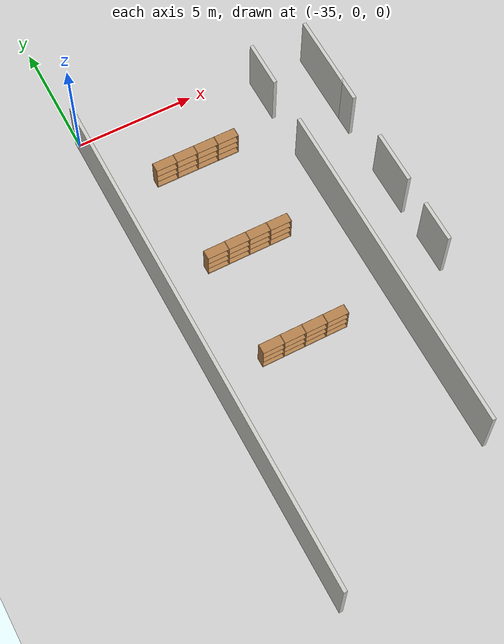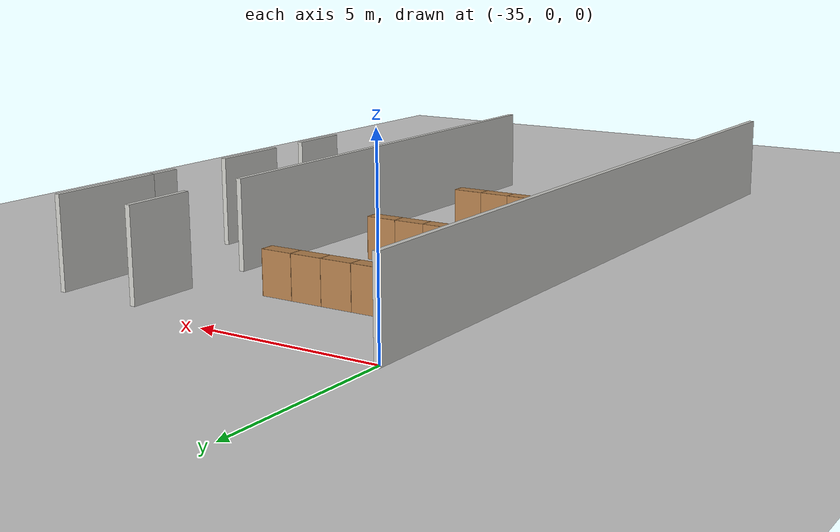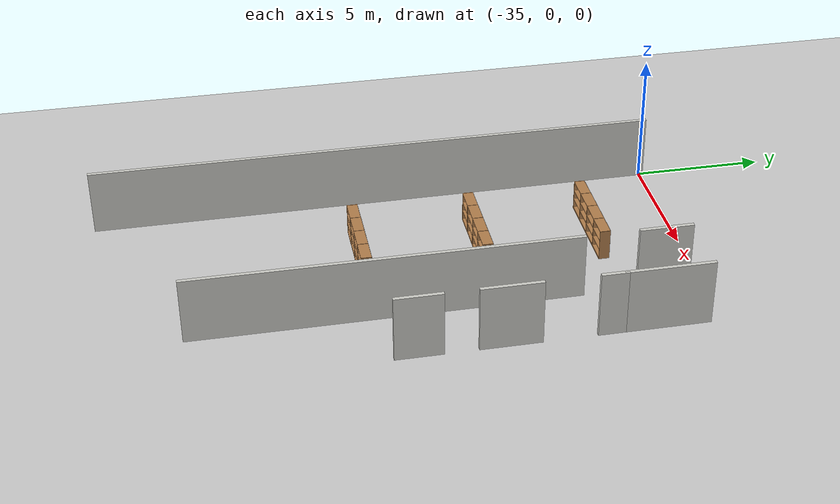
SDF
<sdf version="1.6">
 <world name="default">
  <model name="ground_plane">
   <static>1</static>
   <link name="link">
    <collision name="collision">
     <geometry><plane><normal>0 0 1</normal><size>100 100</size></plane></geometry>
     <surface><friction><ode><mu>100</mu><mu2>50</mu2></ode></friction></surface>
    </collision>
    <visual name="visual">
     <cast_shadows>0</cast_shadows>
     <geometry><plane><normal>0 0 1</normal><size>100 100</size></plane></geometry>
     <material>
      <script><uri>file://media/materials/scripts/gazebo.material</uri><name>Gazebo/Grey</name></script>
     </material>
    </visual>
   </link>
  </model>
  <model name="floor">
   <link name="Wall_15">
    <pose>-36.3 -9.45 0 0 0 -1.5708</pose>
    <visual name="Wall_15_Visual">
     <pose>0 0 1.25 0 -0 0</pose>
     <geometry><box><size>21.75 0.15 2.5</size></box></geometry>
     <material>
      <script><uri>file://media/materials/scripts/gazebo.material</uri><name>Gazebo/CeilingTiled</name></script>
      <ambient>0.760784 0.662745 0.627451 1</ambient>
     </material>
     <meta><layer>0</layer></meta>
    </visual>
    <collision name="Wall_15_Collision">
     <pose>0 0 1.25 0 -0 0</pose>
     <geometry><box><size>21.75 0.15 2.5</size></box></geometry>
     <surface>
      <friction>
       <ode><mu>1</mu><mu2>1</mu2><fdir1>0 0 0</fdir1><slip1>0</slip1><slip2>0</slip2></ode>
       <torsional>
        <coefficient>1</coefficient>
        <patch_radius>0</patch_radius>
        <surface_radius>0</surface_radius>
        <use_patch_radius>1</use_patch_radius>
        <ode><slip>0</slip></ode>
       </torsional>
      </friction>
      <bounce><restitution_coefficient>0</restitution_coefficient><threshold>1e+06</threshold></bounce>
      <contact>
       <collide_without_contact>0</collide_without_contact>
       <collide_without_contact_bitmask>1</collide_without_contact_bitmask>
       <collide_bitmask>1</collide_bitmask>
       <ode>
        <soft_cfm>0</soft_cfm>
        <soft_erp>0.2</soft_erp>
        <kp>1e+13</kp>
        <kd>1</kd>
        <max_vel>0.01</max_vel>
        <min_depth>0</min_depth>
       </ode>
       <bullet>
        <split_impulse>1</split_impulse>
        <split_impulse_penetration_threshold>-0.01</split_impulse_penetration_threshold>
        <soft_cfm>0</soft_cfm>
        <soft_erp>0.2</soft_erp>
        <kp>1e+13</kp>
        <kd>1</kd>
       </bullet>
      </contact>
     </surface>
    </collision>
   </link>
   <link name="Wall_23">
    <pose>-28.6403 -0.187272 0 0 0 -1.5708</pose>
    <visual name="Wall_23_Visual">
     <pose>0 0 1.25 0 -0 0</pose>
     <geometry><box><size>2 0.15 2.5</size></box></geometry>
     <material>
      <script><uri>file://media/materials/scripts/gazebo.material</uri><name>Gazebo/CeilingTiled</name></script>
      <ambient>0.760784 0.662745 0.627451 1</ambient>
     </material>
     <meta><layer>0</layer></meta>
    </visual>
    <collision name="Wall_23_Collision">
     <pose>0 0 1.25 0 -0 0</pose>
     <geometry><box><size>2 0.15 2.5</size></box></geometry>
     <surface>
      <friction>
       <ode><mu>1</mu><mu2>1</mu2><fdir1>0 0 0</fdir1><slip1>0</slip1><slip2>0</slip2></ode>
       <torsional>
        <coefficient>1</coefficient>
        <patch_radius>0</patch_radius>
        <surface_radius>0</surface_radius>
        <use_patch_radius>1</use_patch_radius>
        <ode><slip>0</slip></ode>
       </torsional>
      </friction>
      <bounce><restitution_coefficient>0</restitution_coefficient><threshold>1e+06</threshold></bounce>
      <contact>
       <collide_without_contact>0</collide_without_contact>
       <collide_without_contact_bitmask>1</collide_without_contact_bitmask>
       <collide_bitmask>1</collide_bitmask>
       <ode>
        <soft_cfm>0</soft_cfm>
        <soft_erp>0.2</soft_erp>
        <kp>1e+13</kp>
        <kd>1</kd>
        <max_vel>0.01</max_vel>
        <min_depth>0</min_depth>
       </ode>
       <bullet>
        <split_impulse>1</split_impulse>
        <split_impulse_penetration_threshold>-0.01</split_impulse_penetration_threshold>
        <soft_cfm>0</soft_cfm>
        <soft_erp>0.2</soft_erp>
        <kp>1e+13</kp>
        <kd>1</kd>
       </bullet>
      </contact>
     </surface>
    </collision>
   </link>
   <link name="Wall_25">
    <pose>-28.6403 -10.2623 0 0 0 -1.5708</pose>
    <visual name="Wall_25_Visual">
     <pose>0 0 1.25 0 -0 0</pose>
     <geometry><box><size>14.25 0.15 2.5</size></box></geometry>
     <material>
      <script><uri>file://media/materials/scripts/gazebo.material</uri><name>Gazebo/CeilingTiled</name></script>
      <ambient>0.760784 0.662745 0.627451 1</ambient>
     </material>
     <meta><layer>0</layer></meta>
    </visual>
    <collision name="Wall_25_Collision">
     <pose>0 0 1.25 0 -0 0</pose>
     <geometry><box><size>14.25 0.15 2.5</size></box></geometry>
     <surface>
      <friction>
       <ode><mu>1</mu><mu2>1</mu2><fdir1>0 0 0</fdir1><slip1>0</slip1><slip2>0</slip2></ode>
       <torsional>
        <coefficient>1</coefficient>
        <patch_radius>0</patch_radius>
        <surface_radius>0</surface_radius>
        <use_patch_radius>1</use_patch_radius>
        <ode><slip>0</slip></ode>
       </torsional>
      </friction>
      <bounce><restitution_coefficient>0</restitution_coefficient><threshold>1e+06</threshold></bounce>
      <contact>
       <collide_without_contact>0</collide_without_contact>
       <collide_without_contact_bitmask>1</collide_without_contact_bitmask>
       <collide_bitmask>1</collide_bitmask>
       <ode>
        <soft_cfm>0</soft_cfm>
        <soft_erp>0.2</soft_erp>
        <kp>1e+13</kp>
        <kd>1</kd>
        <max_vel>0.01</max_vel>
        <min_depth>0</min_depth>
       </ode>
       <bullet>
        <split_impulse>1</split_impulse>
        <split_impulse_penetration_threshold>-0.01</split_impulse_penetration_threshold>
        <soft_cfm>0</soft_cfm>
        <soft_erp>0.2</soft_erp>
        <kp>1e+13</kp>
        <kd>1</kd>
       </bullet>
      </contact>
     </surface>
    </collision>
   </link>
   <link name="Wall_38">
    <pose>-26.2339 -0.812272 0 0 0 -1.5708</pose>
    <visual name="Wall_38_Visual">
     <pose>0 0 1.25 0 -0 0</pose>
     <geometry><box><size>3.25 0.15 2.5</size></box></geometry>
     <material>
      <script><uri>file://media/materials/scripts/gazebo.material</uri><name>Gazebo/CeilingTiled</name></script>
      <ambient>0.760784 0.662745 0.627451 1</ambient>
     </material>
     <meta><layer>0</layer></meta>
    </visual>
    <collision name="Wall_38_Collision">
     <pose>0 0 1.25 0 -0 0</pose>
     <geometry><box><size>3.25 0.15 2.5</size></box></geometry>
     <surface>
      <friction>
       <ode><mu>1</mu><mu2>1</mu2><fdir1>0 0 0</fdir1><slip1>0</slip1><slip2>0</slip2></ode>
       <torsional>
        <coefficient>1</coefficient>
        <patch_radius>0</patch_radius>
        <surface_radius>0</surface_radius>
        <use_patch_radius>1</use_patch_radius>
        <ode><slip>0</slip></ode>
       </torsional>
      </friction>
      <bounce><restitution_coefficient>0</restitution_coefficient><threshold>1e+06</threshold></bounce>
      <contact>
       <collide_without_contact>0</collide_without_contact>
       <collide_without_contact_bitmask>1</collide_without_contact_bitmask>
       <collide_bitmask>1</collide_bitmask>
       <ode>
        <soft_cfm>0</soft_cfm>
        <soft_erp>0.2</soft_erp>
        <kp>1e+13</kp>
        <kd>1</kd>
        <max_vel>0.01</max_vel>
        <min_depth>0</min_depth>
       </ode>
       <bullet>
        <split_impulse>1</split_impulse>
        <split_impulse_penetration_threshold>-0.01</split_impulse_penetration_threshold>
        <soft_cfm>0</soft_cfm>
        <soft_erp>0.2</soft_erp>
        <kp>1e+13</kp>
        <kd>1</kd>
       </bullet>
      </contact>
     </surface>
    </collision>
   </link>
   <link name="Wall_39">
    <pose>-26.2339 -2.78727 0 0 0 -1.5708</pose>
    <visual name="Wall_39_Visual">
     <pose>0 0 1.25 0 -0 0</pose>
     <geometry><box><size>1 0.15 2.5</size></box></geometry>
     <material>
      <script><uri>file://media/materials/scripts/gazebo.material</uri><name>Gazebo/CeilingTiled</name></script>
      <ambient>0.760784 0.662745 0.627451 1</ambient>
     </material>
     <meta><layer>0</layer></meta>
    </visual>
    <collision name="Wall_39_Collision">
     <pose>0 0 1.25 0 -0 0</pose>
     <geometry><box><size>1 0.15 2.5</size></box></geometry>
     <surface>
      <friction>
       <ode><mu>1</mu><mu2>1</mu2><fdir1>0 0 0</fdir1><slip1>0</slip1><slip2>0</slip2></ode>
       <torsional>
        <coefficient>1</coefficient>
        <patch_radius>0</patch_radius>
        <surface_radius>0</surface_radius>
        <use_patch_radius>1</use_patch_radius>
        <ode><slip>0</slip></ode>
       </torsional>
      </friction>
      <bounce><restitution_coefficient>0</restitution_coefficient><threshold>1e+06</threshold></bounce>
      <contact>
       <collide_without_contact>0</collide_without_contact>
       <collide_without_contact_bitmask>1</collide_without_contact_bitmask>
       <collide_bitmask>1</collide_bitmask>
       <ode>
        <soft_cfm>0</soft_cfm>
        <soft_erp>0.2</soft_erp>
        <kp>1e+13</kp>
        <kd>1</kd>
        <max_vel>0.01</max_vel>
        <min_depth>0</min_depth>
       </ode>
       <bullet>
        <split_impulse>1</split_impulse>
        <split_impulse_penetration_threshold>-0.01</split_impulse_penetration_threshold>
        <soft_cfm>0</soft_cfm>
        <soft_erp>0.2</soft_erp>
        <kp>1e+13</kp>
        <kd>1</kd>
       </bullet>
      </contact>
     </surface>
    </collision>
   </link>
   <link name="Wall_46">
    <pose>-26.2339 -6.36227 0 0 0 -1.5708</pose>
    <visual name="Wall_46_Visual">
     <pose>0 0 1.25 0 -0 0</pose>
     <geometry><box><size>2.25 0.15 2.5</size></box></geometry>
     <material>
      <script><uri>file://media/materials/scripts/gazebo.material</uri><name>Gazebo/CeilingTiled</name></script>
      <ambient>0.760784 0.662745 0.627451 1</ambient>
     </material>
     <meta><layer>0</layer></meta>
    </visual>
    <collision name="Wall_46_Collision">
     <pose>0 0 1.25 0 -0 0</pose>
     <geometry><box><size>2.25 0.15 2.5</size></box></geometry>
     <surface>
      <friction>
       <ode><mu>1</mu><mu2>1</mu2><fdir1>0 0 0</fdir1><slip1>0</slip1><slip2>0</slip2></ode>
       <torsional>
        <coefficient>1</coefficient>
        <patch_radius>0</patch_radius>
        <surface_radius>0</surface_radius>
        <use_patch_radius>1</use_patch_radius>
        <ode><slip>0</slip></ode>
       </torsional>
      </friction>
      <bounce><restitution_coefficient>0</restitution_coefficient><threshold>1e+06</threshold></bounce>
      <contact>
       <collide_without_contact>0</collide_without_contact>
       <collide_without_contact_bitmask>1</collide_without_contact_bitmask>
       <collide_bitmask>1</collide_bitmask>
       <ode>
        <soft_cfm>0</soft_cfm>
        <soft_erp>0.2</soft_erp>
        <kp>1e+13</kp>
        <kd>1</kd>
        <max_vel>0.01</max_vel>
        <min_depth>0</min_depth>
       </ode>
       <bullet>
        <split_impulse>1</split_impulse>
        <split_impulse_penetration_threshold>-0.01</split_impulse_penetration_threshold>
        <soft_cfm>0</soft_cfm>
        <soft_erp>0.2</soft_erp>
        <kp>1e+13</kp>
        <kd>1</kd>
       </bullet>
      </contact>
     </surface>
    </collision>
   </link>
   <link name="Wall_48">
    <pose>-26.2339 -9.56227 0 0 0 -1.5708</pose>
    <visual name="Wall_48_Visual">
     <pose>0 0 1.25 0 -0 0</pose>
     <geometry><box><size>1.75 0.15 2.5</size></box></geometry>
     <material>
      <script><uri>file://media/materials/scripts/gazebo.material</uri><name>Gazebo/CeilingTiled</name></script>
      <ambient>0.760784 0.662745 0.627451 1</ambient>
     </material>
     <meta><layer>0</layer></meta>
    </visual>
    <collision name="Wall_48_Collision">
     <pose>0 0 1.25 0 -0 0</pose>
     <geometry><box><size>1.75 0.15 2.5</size></box></geometry>
     <surface>
      <friction>
       <ode><mu>1</mu><mu2>1</mu2><fdir1>0 0 0</fdir1><slip1>0</slip1><slip2>0</slip2></ode>
       <torsional>
        <coefficient>1</coefficient>
        <patch_radius>0</patch_radius>
        <surface_radius>0</surface_radius>
        <use_patch_radius>1</use_patch_radius>
        <ode><slip>0</slip></ode>
       </torsional>
      </friction>
      <bounce><restitution_coefficient>0</restitution_coefficient><threshold>1e+06</threshold></bounce>
      <contact>
       <collide_without_contact>0</collide_without_contact>
       <collide_without_contact_bitmask>1</collide_without_contact_bitmask>
       <collide_bitmask>1</collide_bitmask>
       <ode>
        <soft_cfm>0</soft_cfm>
        <soft_erp>0.2</soft_erp>
        <kp>1e+13</kp>
        <kd>1</kd>
        <max_vel>0.01</max_vel>
        <min_depth>0</min_depth>
       </ode>
       <bullet>
        <split_impulse>1</split_impulse>
        <split_impulse_penetration_threshold>-0.01</split_impulse_penetration_threshold>
        <soft_cfm>0</soft_cfm>
        <soft_erp>0.2</soft_erp>
        <kp>1e+13</kp>
        <kd>1</kd>
       </bullet>
      </contact>
     </surface>
    </collision>
   </link>
   <static>1</static>
   <pose>1.26361 -1.27025 0 0 -0 0</pose>
  </model>
  <model name="Bookshelf-4_clone_19">
   <model name="bookshelf">
    <static>1</static>
    <link name="link">
     <inertial><mass>1</mass></inertial>
     <collision name="back">
      <pose>0 0.005 0.6 0 -0 0</pose>
      <geometry><box><size>0.9 0.01 1.2</size></box></geometry>
     </collision>
     <visual name="visual1">
      <pose>0 0.005 0.6 0 -0 0</pose>
      <geometry><box><size>0.9 0.01 1.2</size></box></geometry>
      <material>
       <script><uri>file://media/materials/scripts/gazebo.material</uri><name>Gazebo/Wood</name></script>
      </material>
     </visual>
     <collision name="left_side">
      <pose>0.45 -0.195 0.6 0 -0 0</pose>
      <geometry><box><size>0.02 0.4 1.2</size></box></geometry>
     </collision>
     <visual name="visual2">
      <pose>0.45 -0.195 0.6 0 -0 0</pose>
      <geometry><box><size>0.02 0.4 1.2</size></box></geometry>
      <material>
       <script><uri>file://media/materials/scripts/gazebo.material</uri><name>Gazebo/Wood</name></script>
      </material>
     </visual>
     <collision name="right_side">
      <pose>-0.45 -0.195 0.6 0 -0 0</pose>
      <geometry><box><size>0.02 0.4 1.2</size></box></geometry>
     </collision>
     <visual name="visual3">
      <pose>-0.45 -0.195 0.6 0 -0 0</pose>
      <geometry><box><size>0.02 0.4 1.2</size></box></geometry>
      <material>
       <script><uri>file://media/materials/scripts/gazebo.material</uri><name>Gazebo/Wood</name></script>
      </material>
     </visual>
     <collision name="bottom">
      <pose>0 -0.195 0.03 0 -0 0</pose>
      <geometry><box><size>0.88 0.4 0.06</size></box></geometry>
     </collision>
     <visual name="visual4">
      <pose>0 -0.195 0.03 0 -0 0</pose>
      <geometry><box><size>0.88 0.4 0.06</size></box></geometry>
      <material>
       <script><uri>file://media/materials/scripts/gazebo.material</uri><name>Gazebo/Wood</name></script>
      </material>
     </visual>
     <collision name="top">
      <pose>0 -0.195 1.19 0 -0 0</pose>
      <geometry><box><size>0.88 0.4 0.02</size></box></geometry>
     </collision>
     <visual name="visual5">
      <pose>0 -0.195 1.19 0 -0 0</pose>
      <geometry><box><size>0.88 0.4 0.02</size></box></geometry>
      <material>
       <script><uri>file://media/materials/scripts/gazebo.material</uri><name>Gazebo/Wood</name></script>
      </material>
     </visual>
     <collision name="low_shelf">
      <pose>0 -0.195 0.43 0 -0 0</pose>
      <geometry><box><size>0.88 0.4 0.02</size></box></geometry>
     </collision>
     <visual name="visual6">
      <pose>0 -0.195 0.43 0 -0 0</pose>
      <geometry><box><size>0.88 0.4 0.02</size></box></geometry>
      <material>
       <script><uri>file://media/materials/scripts/gazebo.material</uri><name>Gazebo/Wood</name></script>
      </material>
     </visual>
     <collision name="high_shelf">
      <pose>0 -0.195 0.8 0 -0 0</pose>
      <geometry><box><size>0.88 0.4 0.02</size></box></geometry>
     </collision>
     <visual name="visual7">
      <pose>0 -0.195 0.8 0 -0 0</pose>
      <geometry><box><size>0.88 0.4 0.02</size></box></geometry>
      <material>
       <script><uri>file://media/materials/scripts/gazebo.material</uri><name>Gazebo/Wood</name></script>
      </material>
     </visual>
    </link>
    <pose>-1.35671 -0.002097 0 0 -0 0</pose>
   </model>
   <model name="bookshelf_0">
    <static>1</static>
    <link name="link">
     <inertial><mass>1</mass></inertial>
     <collision name="back">
      <pose>0 0.005 0.6 0 -0 0</pose>
      <geometry><box><size>0.9 0.01 1.2</size></box></geometry>
     </collision>
     <visual name="visual1">
      <pose>0 0.005 0.6 0 -0 0</pose>
      <geometry><box><size>0.9 0.01 1.2</size></box></geometry>
      <material>
       <script><uri>file://media/materials/scripts/gazebo.material</uri><name>Gazebo/Wood</name></script>
      </material>
     </visual>
     <collision name="left_side">
      <pose>0.45 -0.195 0.6 0 -0 0</pose>
      <geometry><box><size>0.02 0.4 1.2</size></box></geometry>
     </collision>
     <visual name="visual2">
      <pose>0.45 -0.195 0.6 0 -0 0</pose>
      <geometry><box><size>0.02 0.4 1.2</size></box></geometry>
      <material>
       <script><uri>file://media/materials/scripts/gazebo.material</uri><name>Gazebo/Wood</name></script>
      </material>
     </visual>
     <collision name="right_side">
      <pose>-0.45 -0.195 0.6 0 -0 0</pose>
      <geometry><box><size>0.02 0.4 1.2</size></box></geometry>
     </collision>
     <visual name="visual3">
      <pose>-0.45 -0.195 0.6 0 -0 0</pose>
      <geometry><box><size>0.02 0.4 1.2</size></box></geometry>
      <material>
       <script><uri>file://media/materials/scripts/gazebo.material</uri><name>Gazebo/Wood</name></script>
      </material>
     </visual>
     <collision name="bottom">
      <pose>0 -0.195 0.03 0 -0 0</pose>
      <geometry><box><size>0.88 0.4 0.06</size></box></geometry>
     </collision>
     <visual name="visual4">
      <pose>0 -0.195 0.03 0 -0 0</pose>
      <geometry><box><size>0.88 0.4 0.06</size></box></geometry>
      <material>
       <script><uri>file://media/materials/scripts/gazebo.material</uri><name>Gazebo/Wood</name></script>
      </material>
     </visual>
     <collision name="top">
      <pose>0 -0.195 1.19 0 -0 0</pose>
      <geometry><box><size>0.88 0.4 0.02</size></box></geometry>
     </collision>
     <visual name="visual5">
      <pose>0 -0.195 1.19 0 -0 0</pose>
      <geometry><box><size>0.88 0.4 0.02</size></box></geometry>
      <material>
       <script><uri>file://media/materials/scripts/gazebo.material</uri><name>Gazebo/Wood</name></script>
      </material>
     </visual>
     <collision name="low_shelf">
      <pose>0 -0.195 0.43 0 -0 0</pose>
      <geometry><box><size>0.88 0.4 0.02</size></box></geometry>
     </collision>
     <visual name="visual6">
      <pose>0 -0.195 0.43 0 -0 0</pose>
      <geometry><box><size>0.88 0.4 0.02</size></box></geometry>
      <material>
       <script><uri>file://media/materials/scripts/gazebo.material</uri><name>Gazebo/Wood</name></script>
      </material>
     </visual>
     <collision name="high_shelf">
      <pose>0 -0.195 0.8 0 -0 0</pose>
      <geometry><box><size>0.88 0.4 0.02</size></box></geometry>
     </collision>
     <visual name="visual7">
      <pose>0 -0.195 0.8 0 -0 0</pose>
      <geometry><box><size>0.88 0.4 0.02</size></box></geometry>
      <material>
       <script><uri>file://media/materials/scripts/gazebo.material</uri><name>Gazebo/Wood</name></script>
      </material>
     </visual>
    </link>
    <pose>-0.452974 0.001386 0 0 -0 0</pose>
   </model>
   <model name="bookshelf_1">
    <static>1</static>
    <link name="link">
     <inertial><mass>1</mass></inertial>
     <collision name="back">
      <pose>0 0.005 0.6 0 -0 0</pose>
      <geometry><box><size>0.9 0.01 1.2</size></box></geometry>
     </collision>
     <visual name="visual1">
      <pose>0 0.005 0.6 0 -0 0</pose>
      <geometry><box><size>0.9 0.01 1.2</size></box></geometry>
      <material>
       <script><uri>file://media/materials/scripts/gazebo.material</uri><name>Gazebo/Wood</name></script>
      </material>
     </visual>
     <collision name="left_side">
      <pose>0.45 -0.195 0.6 0 -0 0</pose>
      <geometry><box><size>0.02 0.4 1.2</size></box></geometry>
     </collision>
     <visual name="visual2">
      <pose>0.45 -0.195 0.6 0 -0 0</pose>
      <geometry><box><size>0.02 0.4 1.2</size></box></geometry>
      <material>
       <script><uri>file://media/materials/scripts/gazebo.material</uri><name>Gazebo/Wood</name></script>
      </material>
     </visual>
     <collision name="right_side">
      <pose>-0.45 -0.195 0.6 0 -0 0</pose>
      <geometry><box><size>0.02 0.4 1.2</size></box></geometry>
     </collision>
     <visual name="visual3">
      <pose>-0.45 -0.195 0.6 0 -0 0</pose>
      <geometry><box><size>0.02 0.4 1.2</size></box></geometry>
      <material>
       <script><uri>file://media/materials/scripts/gazebo.material</uri><name>Gazebo/Wood</name></script>
      </material>
     </visual>
     <collision name="bottom">
      <pose>0 -0.195 0.03 0 -0 0</pose>
      <geometry><box><size>0.88 0.4 0.06</size></box></geometry>
     </collision>
     <visual name="visual4">
      <pose>0 -0.195 0.03 0 -0 0</pose>
      <geometry><box><size>0.88 0.4 0.06</size></box></geometry>
      <material>
       <script><uri>file://media/materials/scripts/gazebo.material</uri><name>Gazebo/Wood</name></script>
      </material>
     </visual>
     <collision name="top">
      <pose>0 -0.195 1.19 0 -0 0</pose>
      <geometry><box><size>0.88 0.4 0.02</size></box></geometry>
     </collision>
     <visual name="visual5">
      <pose>0 -0.195 1.19 0 -0 0</pose>
      <geometry><box><size>0.88 0.4 0.02</size></box></geometry>
      <material>
       <script><uri>file://media/materials/scripts/gazebo.material</uri><name>Gazebo/Wood</name></script>
      </material>
     </visual>
     <collision name="low_shelf">
      <pose>0 -0.195 0.43 0 -0 0</pose>
      <geometry><box><size>0.88 0.4 0.02</size></box></geometry>
     </collision>
     <visual name="visual6">
      <pose>0 -0.195 0.43 0 -0 0</pose>
      <geometry><box><size>0.88 0.4 0.02</size></box></geometry>
      <material>
       <script><uri>file://media/materials/scripts/gazebo.material</uri><name>Gazebo/Wood</name></script>
      </material>
     </visual>
     <collision name="high_shelf">
      <pose>0 -0.195 0.8 0 -0 0</pose>
      <geometry><box><size>0.88 0.4 0.02</size></box></geometry>
     </collision>
     <visual name="visual7">
      <pose>0 -0.195 0.8 0 -0 0</pose>
      <geometry><box><size>0.88 0.4 0.02</size></box></geometry>
      <material>
       <script><uri>file://media/materials/scripts/gazebo.material</uri><name>Gazebo/Wood</name></script>
      </material>
     </visual>
    </link>
    <pose>0.450456 0.000733 0 0 -0 0</pose>
   </model>
   <model name="bookshelf_2">
    <static>1</static>
    <link name="link">
     <inertial><mass>1</mass></inertial>
     <collision name="back">
      <pose>0 0.005 0.6 0 -0 0</pose>
      <geometry><box><size>0.9 0.01 1.2</size></box></geometry>
     </collision>
     <visual name="visual1">
      <pose>0 0.005 0.6 0 -0 0</pose>
      <geometry><box><size>0.9 0.01 1.2</size></box></geometry>
      <material>
       <script><uri>file://media/materials/scripts/gazebo.material</uri><name>Gazebo/Wood</name></script>
      </material>
     </visual>
     <collision name="left_side">
      <pose>0.45 -0.195 0.6 0 -0 0</pose>
      <geometry><box><size>0.02 0.4 1.2</size></box></geometry>
     </collision>
     <visual name="visual2">
      <pose>0.45 -0.195 0.6 0 -0 0</pose>
      <geometry><box><size>0.02 0.4 1.2</size></box></geometry>
      <material>
       <script><uri>file://media/materials/scripts/gazebo.material</uri><name>Gazebo/Wood</name></script>
      </material>
     </visual>
     <collision name="right_side">
      <pose>-0.45 -0.195 0.6 0 -0 0</pose>
      <geometry><box><size>0.02 0.4 1.2</size></box></geometry>
     </collision>
     <visual name="visual3">
      <pose>-0.45 -0.195 0.6 0 -0 0</pose>
      <geometry><box><size>0.02 0.4 1.2</size></box></geometry>
      <material>
       <script><uri>file://media/materials/scripts/gazebo.material</uri><name>Gazebo/Wood</name></script>
      </material>
     </visual>
     <collision name="bottom">
      <pose>0 -0.195 0.03 0 -0 0</pose>
      <geometry><box><size>0.88 0.4 0.06</size></box></geometry>
     </collision>
     <visual name="visual4">
      <pose>0 -0.195 0.03 0 -0 0</pose>
      <geometry><box><size>0.88 0.4 0.06</size></box></geometry>
      <material>
       <script><uri>file://media/materials/scripts/gazebo.material</uri><name>Gazebo/Wood</name></script>
      </material>
     </visual>
     <collision name="top">
      <pose>0 -0.195 1.19 0 -0 0</pose>
      <geometry><box><size>0.88 0.4 0.02</size></box></geometry>
     </collision>
     <visual name="visual5">
      <pose>0 -0.195 1.19 0 -0 0</pose>
      <geometry><box><size>0.88 0.4 0.02</size></box></geometry>
      <material>
       <script><uri>file://media/materials/scripts/gazebo.material</uri><name>Gazebo/Wood</name></script>
      </material>
     </visual>
     <collision name="low_shelf">
      <pose>0 -0.195 0.43 0 -0 0</pose>
      <geometry><box><size>0.88 0.4 0.02</size></box></geometry>
     </collision>
     <visual name="visual6">
      <pose>0 -0.195 0.43 0 -0 0</pose>
      <geometry><box><size>0.88 0.4 0.02</size></box></geometry>
      <material>
       <script><uri>file://media/materials/scripts/gazebo.material</uri><name>Gazebo/Wood</name></script>
      </material>
     </visual>
     <collision name="high_shelf">
      <pose>0 -0.195 0.8 0 -0 0</pose>
      <geometry><box><size>0.88 0.4 0.02</size></box></geometry>
     </collision>
     <visual name="visual7">
      <pose>0 -0.195 0.8 0 -0 0</pose>
      <geometry><box><size>0.88 0.4 0.02</size></box></geometry>
      <material>
       <script><uri>file://media/materials/scripts/gazebo.material</uri><name>Gazebo/Wood</name></script>
      </material>
     </visual>
    </link>
    <pose>1.35922 -1.7e-05 0 0 -0 0</pose>
   </model>
   <static>0</static>
   <pose>-31.2412 -2.86092 0 0 -0 0</pose>
  </model>
  <model name="Bookshelf-4_clone_20">
   <model name="bookshelf">
    <static>1</static>
    <link name="link">
     <inertial><mass>1</mass></inertial>
     <collision name="back">
      <pose>0 0.005 0.6 0 -0 0</pose>
      <geometry><box><size>0.9 0.01 1.2</size></box></geometry>
     </collision>
     <visual name="visual1">
      <pose>0 0.005 0.6 0 -0 0</pose>
      <geometry><box><size>0.9 0.01 1.2</size></box></geometry>
      <material>
       <script><uri>file://media/materials/scripts/gazebo.material</uri><name>Gazebo/Wood</name></script>
      </material>
     </visual>
     <collision name="left_side">
      <pose>0.45 -0.195 0.6 0 -0 0</pose>
      <geometry><box><size>0.02 0.4 1.2</size></box></geometry>
     </collision>
     <visual name="visual2">
      <pose>0.45 -0.195 0.6 0 -0 0</pose>
      <geometry><box><size>0.02 0.4 1.2</size></box></geometry>
      <material>
       <script><uri>file://media/materials/scripts/gazebo.material</uri><name>Gazebo/Wood</name></script>
      </material>
     </visual>
     <collision name="right_side">
      <pose>-0.45 -0.195 0.6 0 -0 0</pose>
      <geometry><box><size>0.02 0.4 1.2</size></box></geometry>
     </collision>
     <visual name="visual3">
      <pose>-0.45 -0.195 0.6 0 -0 0</pose>
      <geometry><box><size>0.02 0.4 1.2</size></box></geometry>
      <material>
       <script><uri>file://media/materials/scripts/gazebo.material</uri><name>Gazebo/Wood</name></script>
      </material>
     </visual>
     <collision name="bottom">
      <pose>0 -0.195 0.03 0 -0 0</pose>
      <geometry><box><size>0.88 0.4 0.06</size></box></geometry>
     </collision>
     <visual name="visual4">
      <pose>0 -0.195 0.03 0 -0 0</pose>
      <geometry><box><size>0.88 0.4 0.06</size></box></geometry>
      <material>
       <script><uri>file://media/materials/scripts/gazebo.material</uri><name>Gazebo/Wood</name></script>
      </material>
     </visual>
     <collision name="top">
      <pose>0 -0.195 1.19 0 -0 0</pose>
      <geometry><box><size>0.88 0.4 0.02</size></box></geometry>
     </collision>
     <visual name="visual5">
      <pose>0 -0.195 1.19 0 -0 0</pose>
      <geometry><box><size>0.88 0.4 0.02</size></box></geometry>
      <material>
       <script><uri>file://media/materials/scripts/gazebo.material</uri><name>Gazebo/Wood</name></script>
      </material>
     </visual>
     <collision name="low_shelf">
      <pose>0 -0.195 0.43 0 -0 0</pose>
      <geometry><box><size>0.88 0.4 0.02</size></box></geometry>
     </collision>
     <visual name="visual6">
      <pose>0 -0.195 0.43 0 -0 0</pose>
      <geometry><box><size>0.88 0.4 0.02</size></box></geometry>
      <material>
       <script><uri>file://media/materials/scripts/gazebo.material</uri><name>Gazebo/Wood</name></script>
      </material>
     </visual>
     <collision name="high_shelf">
      <pose>0 -0.195 0.8 0 -0 0</pose>
      <geometry><box><size>0.88 0.4 0.02</size></box></geometry>
     </collision>
     <visual name="visual7">
      <pose>0 -0.195 0.8 0 -0 0</pose>
      <geometry><box><size>0.88 0.4 0.02</size></box></geometry>
      <material>
       <script><uri>file://media/materials/scripts/gazebo.material</uri><name>Gazebo/Wood</name></script>
      </material>
     </visual>
    </link>
    <pose>-1.35671 -0.002097 0 0 -0 0</pose>
   </model>
   <model name="bookshelf_0">
    <static>1</static>
    <link name="link">
     <inertial><mass>1</mass></inertial>
     <collision name="back">
      <pose>0 0.005 0.6 0 -0 0</pose>
      <geometry><box><size>0.9 0.01 1.2</size></box></geometry>
     </collision>
     <visual name="visual1">
      <pose>0 0.005 0.6 0 -0 0</pose>
      <geometry><box><size>0.9 0.01 1.2</size></box></geometry>
      <material>
       <script><uri>file://media/materials/scripts/gazebo.material</uri><name>Gazebo/Wood</name></script>
      </material>
     </visual>
     <collision name="left_side">
      <pose>0.45 -0.195 0.6 0 -0 0</pose>
      <geometry><box><size>0.02 0.4 1.2</size></box></geometry>
     </collision>
     <visual name="visual2">
      <pose>0.45 -0.195 0.6 0 -0 0</pose>
      <geometry><box><size>0.02 0.4 1.2</size></box></geometry>
      <material>
       <script><uri>file://media/materials/scripts/gazebo.material</uri><name>Gazebo/Wood</name></script>
      </material>
     </visual>
     <collision name="right_side">
      <pose>-0.45 -0.195 0.6 0 -0 0</pose>
      <geometry><box><size>0.02 0.4 1.2</size></box></geometry>
     </collision>
     <visual name="visual3">
      <pose>-0.45 -0.195 0.6 0 -0 0</pose>
      <geometry><box><size>0.02 0.4 1.2</size></box></geometry>
      <material>
       <script><uri>file://media/materials/scripts/gazebo.material</uri><name>Gazebo/Wood</name></script>
      </material>
     </visual>
     <collision name="bottom">
      <pose>0 -0.195 0.03 0 -0 0</pose>
      <geometry><box><size>0.88 0.4 0.06</size></box></geometry>
     </collision>
     <visual name="visual4">
      <pose>0 -0.195 0.03 0 -0 0</pose>
      <geometry><box><size>0.88 0.4 0.06</size></box></geometry>
      <material>
       <script><uri>file://media/materials/scripts/gazebo.material</uri><name>Gazebo/Wood</name></script>
      </material>
     </visual>
     <collision name="top">
      <pose>0 -0.195 1.19 0 -0 0</pose>
      <geometry><box><size>0.88 0.4 0.02</size></box></geometry>
     </collision>
     <visual name="visual5">
      <pose>0 -0.195 1.19 0 -0 0</pose>
      <geometry><box><size>0.88 0.4 0.02</size></box></geometry>
      <material>
       <script><uri>file://media/materials/scripts/gazebo.material</uri><name>Gazebo/Wood</name></script>
      </material>
     </visual>
     <collision name="low_shelf">
      <pose>0 -0.195 0.43 0 -0 0</pose>
      <geometry><box><size>0.88 0.4 0.02</size></box></geometry>
     </collision>
     <visual name="visual6">
      <pose>0 -0.195 0.43 0 -0 0</pose>
      <geometry><box><size>0.88 0.4 0.02</size></box></geometry>
      <material>
       <script><uri>file://media/materials/scripts/gazebo.material</uri><name>Gazebo/Wood</name></script>
      </material>
     </visual>
     <collision name="high_shelf">
      <pose>0 -0.195 0.8 0 -0 0</pose>
      <geometry><box><size>0.88 0.4 0.02</size></box></geometry>
     </collision>
     <visual name="visual7">
      <pose>0 -0.195 0.8 0 -0 0</pose>
      <geometry><box><size>0.88 0.4 0.02</size></box></geometry>
      <material>
       <script><uri>file://media/materials/scripts/gazebo.material</uri><name>Gazebo/Wood</name></script>
      </material>
     </visual>
    </link>
    <pose>-0.452974 0.001386 0 0 -0 0</pose>
   </model>
   <model name="bookshelf_1">
    <static>1</static>
    <link name="link">
     <inertial><mass>1</mass></inertial>
     <collision name="back">
      <pose>0 0.005 0.6 0 -0 0</pose>
      <geometry><box><size>0.9 0.01 1.2</size></box></geometry>
     </collision>
     <visual name="visual1">
      <pose>0 0.005 0.6 0 -0 0</pose>
      <geometry><box><size>0.9 0.01 1.2</size></box></geometry>
      <material>
       <script><uri>file://media/materials/scripts/gazebo.material</uri><name>Gazebo/Wood</name></script>
      </material>
     </visual>
     <collision name="left_side">
      <pose>0.45 -0.195 0.6 0 -0 0</pose>
      <geometry><box><size>0.02 0.4 1.2</size></box></geometry>
     </collision>
     <visual name="visual2">
      <pose>0.45 -0.195 0.6 0 -0 0</pose>
      <geometry><box><size>0.02 0.4 1.2</size></box></geometry>
      <material>
       <script><uri>file://media/materials/scripts/gazebo.material</uri><name>Gazebo/Wood</name></script>
      </material>
     </visual>
     <collision name="right_side">
      <pose>-0.45 -0.195 0.6 0 -0 0</pose>
      <geometry><box><size>0.02 0.4 1.2</size></box></geometry>
     </collision>
     <visual name="visual3">
      <pose>-0.45 -0.195 0.6 0 -0 0</pose>
      <geometry><box><size>0.02 0.4 1.2</size></box></geometry>
      <material>
       <script><uri>file://media/materials/scripts/gazebo.material</uri><name>Gazebo/Wood</name></script>
      </material>
     </visual>
     <collision name="bottom">
      <pose>0 -0.195 0.03 0 -0 0</pose>
      <geometry><box><size>0.88 0.4 0.06</size></box></geometry>
     </collision>
     <visual name="visual4">
      <pose>0 -0.195 0.03 0 -0 0</pose>
      <geometry><box><size>0.88 0.4 0.06</size></box></geometry>
      <material>
       <script><uri>file://media/materials/scripts/gazebo.material</uri><name>Gazebo/Wood</name></script>
      </material>
     </visual>
     <collision name="top">
      <pose>0 -0.195 1.19 0 -0 0</pose>
      <geometry><box><size>0.88 0.4 0.02</size></box></geometry>
     </collision>
     <visual name="visual5">
      <pose>0 -0.195 1.19 0 -0 0</pose>
      <geometry><box><size>0.88 0.4 0.02</size></box></geometry>
      <material>
       <script><uri>file://media/materials/scripts/gazebo.material</uri><name>Gazebo/Wood</name></script>
      </material>
     </visual>
     <collision name="low_shelf">
      <pose>0 -0.195 0.43 0 -0 0</pose>
      <geometry><box><size>0.88 0.4 0.02</size></box></geometry>
     </collision>
     <visual name="visual6">
      <pose>0 -0.195 0.43 0 -0 0</pose>
      <geometry><box><size>0.88 0.4 0.02</size></box></geometry>
      <material>
       <script><uri>file://media/materials/scripts/gazebo.material</uri><name>Gazebo/Wood</name></script>
      </material>
     </visual>
     <collision name="high_shelf">
      <pose>0 -0.195 0.8 0 -0 0</pose>
      <geometry><box><size>0.88 0.4 0.02</size></box></geometry>
     </collision>
     <visual name="visual7">
      <pose>0 -0.195 0.8 0 -0 0</pose>
      <geometry><box><size>0.88 0.4 0.02</size></box></geometry>
      <material>
       <script><uri>file://media/materials/scripts/gazebo.material</uri><name>Gazebo/Wood</name></script>
      </material>
     </visual>
    </link>
    <pose>0.450456 0.000733 0 0 -0 0</pose>
   </model>
   <model name="bookshelf_2">
    <static>1</static>
    <link name="link">
     <inertial><mass>1</mass></inertial>
     <collision name="back">
      <pose>0 0.005 0.6 0 -0 0</pose>
      <geometry><box><size>0.9 0.01 1.2</size></box></geometry>
     </collision>
     <visual name="visual1">
      <pose>0 0.005 0.6 0 -0 0</pose>
      <geometry><box><size>0.9 0.01 1.2</size></box></geometry>
      <material>
       <script><uri>file://media/materials/scripts/gazebo.material</uri><name>Gazebo/Wood</name></script>
      </material>
     </visual>
     <collision name="left_side">
      <pose>0.45 -0.195 0.6 0 -0 0</pose>
      <geometry><box><size>0.02 0.4 1.2</size></box></geometry>
     </collision>
     <visual name="visual2">
      <pose>0.45 -0.195 0.6 0 -0 0</pose>
      <geometry><box><size>0.02 0.4 1.2</size></box></geometry>
      <material>
       <script><uri>file://media/materials/scripts/gazebo.material</uri><name>Gazebo/Wood</name></script>
      </material>
     </visual>
     <collision name="right_side">
      <pose>-0.45 -0.195 0.6 0 -0 0</pose>
      <geometry><box><size>0.02 0.4 1.2</size></box></geometry>
     </collision>
     <visual name="visual3">
      <pose>-0.45 -0.195 0.6 0 -0 0</pose>
      <geometry><box><size>0.02 0.4 1.2</size></box></geometry>
      <material>
       <script><uri>file://media/materials/scripts/gazebo.material</uri><name>Gazebo/Wood</name></script>
      </material>
     </visual>
     <collision name="bottom">
      <pose>0 -0.195 0.03 0 -0 0</pose>
      <geometry><box><size>0.88 0.4 0.06</size></box></geometry>
     </collision>
     <visual name="visual4">
      <pose>0 -0.195 0.03 0 -0 0</pose>
      <geometry><box><size>0.88 0.4 0.06</size></box></geometry>
      <material>
       <script><uri>file://media/materials/scripts/gazebo.material</uri><name>Gazebo/Wood</name></script>
      </material>
     </visual>
     <collision name="top">
      <pose>0 -0.195 1.19 0 -0 0</pose>
      <geometry><box><size>0.88 0.4 0.02</size></box></geometry>
     </collision>
     <visual name="visual5">
      <pose>0 -0.195 1.19 0 -0 0</pose>
      <geometry><box><size>0.88 0.4 0.02</size></box></geometry>
      <material>
       <script><uri>file://media/materials/scripts/gazebo.material</uri><name>Gazebo/Wood</name></script>
      </material>
     </visual>
     <collision name="low_shelf">
      <pose>0 -0.195 0.43 0 -0 0</pose>
      <geometry><box><size>0.88 0.4 0.02</size></box></geometry>
     </collision>
     <visual name="visual6">
      <pose>0 -0.195 0.43 0 -0 0</pose>
      <geometry><box><size>0.88 0.4 0.02</size></box></geometry>
      <material>
       <script><uri>file://media/materials/scripts/gazebo.material</uri><name>Gazebo/Wood</name></script>
      </material>
     </visual>
     <collision name="high_shelf">
      <pose>0 -0.195 0.8 0 -0 0</pose>
      <geometry><box><size>0.88 0.4 0.02</size></box></geometry>
     </collision>
     <visual name="visual7">
      <pose>0 -0.195 0.8 0 -0 0</pose>
      <geometry><box><size>0.88 0.4 0.02</size></box></geometry>
      <material>
       <script><uri>file://media/materials/scripts/gazebo.material</uri><name>Gazebo/Wood</name></script>
      </material>
     </visual>
    </link>
    <pose>1.35922 -1.7e-05 0 0 -0 0</pose>
   </model>
   <static>0</static>
   <pose>-31.2412 -7.27769 0 0 -0 0</pose>
  </model>
  <model name="Bookshelf-4_clone_21">
   <model name="bookshelf">
    <static>1</static>
    <link name="link">
     <inertial><mass>1</mass></inertial>
     <collision name="back">
      <pose>0 0.005 0.6 0 -0 0</pose>
      <geometry><box><size>0.9 0.01 1.2</size></box></geometry>
     </collision>
     <visual name="visual1">
      <pose>0 0.005 0.6 0 -0 0</pose>
      <geometry><box><size>0.9 0.01 1.2</size></box></geometry>
      <material>
       <script><uri>file://media/materials/scripts/gazebo.material</uri><name>Gazebo/Wood</name></script>
      </material>
     </visual>
     <collision name="left_side">
      <pose>0.45 -0.195 0.6 0 -0 0</pose>
      <geometry><box><size>0.02 0.4 1.2</size></box></geometry>
     </collision>
     <visual name="visual2">
      <pose>0.45 -0.195 0.6 0 -0 0</pose>
      <geometry><box><size>0.02 0.4 1.2</size></box></geometry>
      <material>
       <script><uri>file://media/materials/scripts/gazebo.material</uri><name>Gazebo/Wood</name></script>
      </material>
     </visual>
     <collision name="right_side">
      <pose>-0.45 -0.195 0.6 0 -0 0</pose>
      <geometry><box><size>0.02 0.4 1.2</size></box></geometry>
     </collision>
     <visual name="visual3">
      <pose>-0.45 -0.195 0.6 0 -0 0</pose>
      <geometry><box><size>0.02 0.4 1.2</size></box></geometry>
      <material>
       <script><uri>file://media/materials/scripts/gazebo.material</uri><name>Gazebo/Wood</name></script>
      </material>
     </visual>
     <collision name="bottom">
      <pose>0 -0.195 0.03 0 -0 0</pose>
      <geometry><box><size>0.88 0.4 0.06</size></box></geometry>
     </collision>
     <visual name="visual4">
      <pose>0 -0.195 0.03 0 -0 0</pose>
      <geometry><box><size>0.88 0.4 0.06</size></box></geometry>
      <material>
       <script><uri>file://media/materials/scripts/gazebo.material</uri><name>Gazebo/Wood</name></script>
      </material>
     </visual>
     <collision name="top">
      <pose>0 -0.195 1.19 0 -0 0</pose>
      <geometry><box><size>0.88 0.4 0.02</size></box></geometry>
     </collision>
     <visual name="visual5">
      <pose>0 -0.195 1.19 0 -0 0</pose>
      <geometry><box><size>0.88 0.4 0.02</size></box></geometry>
      <material>
       <script><uri>file://media/materials/scripts/gazebo.material</uri><name>Gazebo/Wood</name></script>
      </material>
     </visual>
     <collision name="low_shelf">
      <pose>0 -0.195 0.43 0 -0 0</pose>
      <geometry><box><size>0.88 0.4 0.02</size></box></geometry>
     </collision>
     <visual name="visual6">
      <pose>0 -0.195 0.43 0 -0 0</pose>
      <geometry><box><size>0.88 0.4 0.02</size></box></geometry>
      <material>
       <script><uri>file://media/materials/scripts/gazebo.material</uri><name>Gazebo/Wood</name></script>
      </material>
     </visual>
     <collision name="high_shelf">
      <pose>0 -0.195 0.8 0 -0 0</pose>
      <geometry><box><size>0.88 0.4 0.02</size></box></geometry>
     </collision>
     <visual name="visual7">
      <pose>0 -0.195 0.8 0 -0 0</pose>
      <geometry><box><size>0.88 0.4 0.02</size></box></geometry>
      <material>
       <script><uri>file://media/materials/scripts/gazebo.material</uri><name>Gazebo/Wood</name></script>
      </material>
     </visual>
    </link>
    <pose>-1.35671 -0.002097 0 0 -0 0</pose>
   </model>
   <model name="bookshelf_0">
    <static>1</static>
    <link name="link">
     <inertial><mass>1</mass></inertial>
     <collision name="back">
      <pose>0 0.005 0.6 0 -0 0</pose>
      <geometry><box><size>0.9 0.01 1.2</size></box></geometry>
     </collision>
     <visual name="visual1">
      <pose>0 0.005 0.6 0 -0 0</pose>
      <geometry><box><size>0.9 0.01 1.2</size></box></geometry>
      <material>
       <script><uri>file://media/materials/scripts/gazebo.material</uri><name>Gazebo/Wood</name></script>
      </material>
     </visual>
     <collision name="left_side">
      <pose>0.45 -0.195 0.6 0 -0 0</pose>
      <geometry><box><size>0.02 0.4 1.2</size></box></geometry>
     </collision>
     <visual name="visual2">
      <pose>0.45 -0.195 0.6 0 -0 0</pose>
      <geometry><box><size>0.02 0.4 1.2</size></box></geometry>
      <material>
       <script><uri>file://media/materials/scripts/gazebo.material</uri><name>Gazebo/Wood</name></script>
      </material>
     </visual>
     <collision name="right_side">
      <pose>-0.45 -0.195 0.6 0 -0 0</pose>
      <geometry><box><size>0.02 0.4 1.2</size></box></geometry>
     </collision>
     <visual name="visual3">
      <pose>-0.45 -0.195 0.6 0 -0 0</pose>
      <geometry><box><size>0.02 0.4 1.2</size></box></geometry>
      <material>
       <script><uri>file://media/materials/scripts/gazebo.material</uri><name>Gazebo/Wood</name></script>
      </material>
     </visual>
     <collision name="bottom">
      <pose>0 -0.195 0.03 0 -0 0</pose>
      <geometry><box><size>0.88 0.4 0.06</size></box></geometry>
     </collision>
     <visual name="visual4">
      <pose>0 -0.195 0.03 0 -0 0</pose>
      <geometry><box><size>0.88 0.4 0.06</size></box></geometry>
      <material>
       <script><uri>file://media/materials/scripts/gazebo.material</uri><name>Gazebo/Wood</name></script>
      </material>
     </visual>
     <collision name="top">
      <pose>0 -0.195 1.19 0 -0 0</pose>
      <geometry><box><size>0.88 0.4 0.02</size></box></geometry>
     </collision>
     <visual name="visual5">
      <pose>0 -0.195 1.19 0 -0 0</pose>
      <geometry><box><size>0.88 0.4 0.02</size></box></geometry>
      <material>
       <script><uri>file://media/materials/scripts/gazebo.material</uri><name>Gazebo/Wood</name></script>
      </material>
     </visual>
     <collision name="low_shelf">
      <pose>0 -0.195 0.43 0 -0 0</pose>
      <geometry><box><size>0.88 0.4 0.02</size></box></geometry>
     </collision>
     <visual name="visual6">
      <pose>0 -0.195 0.43 0 -0 0</pose>
      <geometry><box><size>0.88 0.4 0.02</size></box></geometry>
      <material>
       <script><uri>file://media/materials/scripts/gazebo.material</uri><name>Gazebo/Wood</name></script>
      </material>
     </visual>
     <collision name="high_shelf">
      <pose>0 -0.195 0.8 0 -0 0</pose>
      <geometry><box><size>0.88 0.4 0.02</size></box></geometry>
     </collision>
     <visual name="visual7">
      <pose>0 -0.195 0.8 0 -0 0</pose>
      <geometry><box><size>0.88 0.4 0.02</size></box></geometry>
      <material>
       <script><uri>file://media/materials/scripts/gazebo.material</uri><name>Gazebo/Wood</name></script>
      </material>
     </visual>
    </link>
    <pose>-0.452974 0.001386 0 0 -0 0</pose>
   </model>
   <model name="bookshelf_1">
    <static>1</static>
    <link name="link">
     <inertial><mass>1</mass></inertial>
     <collision name="back">
      <pose>0 0.005 0.6 0 -0 0</pose>
      <geometry><box><size>0.9 0.01 1.2</size></box></geometry>
     </collision>
     <visual name="visual1">
      <pose>0 0.005 0.6 0 -0 0</pose>
      <geometry><box><size>0.9 0.01 1.2</size></box></geometry>
      <material>
       <script><uri>file://media/materials/scripts/gazebo.material</uri><name>Gazebo/Wood</name></script>
      </material>
     </visual>
     <collision name="left_side">
      <pose>0.45 -0.195 0.6 0 -0 0</pose>
      <geometry><box><size>0.02 0.4 1.2</size></box></geometry>
     </collision>
     <visual name="visual2">
      <pose>0.45 -0.195 0.6 0 -0 0</pose>
      <geometry><box><size>0.02 0.4 1.2</size></box></geometry>
      <material>
       <script><uri>file://media/materials/scripts/gazebo.material</uri><name>Gazebo/Wood</name></script>
      </material>
     </visual>
     <collision name="right_side">
      <pose>-0.45 -0.195 0.6 0 -0 0</pose>
      <geometry><box><size>0.02 0.4 1.2</size></box></geometry>
     </collision>
     <visual name="visual3">
      <pose>-0.45 -0.195 0.6 0 -0 0</pose>
      <geometry><box><size>0.02 0.4 1.2</size></box></geometry>
      <material>
       <script><uri>file://media/materials/scripts/gazebo.material</uri><name>Gazebo/Wood</name></script>
      </material>
     </visual>
     <collision name="bottom">
      <pose>0 -0.195 0.03 0 -0 0</pose>
      <geometry><box><size>0.88 0.4 0.06</size></box></geometry>
     </collision>
     <visual name="visual4">
      <pose>0 -0.195 0.03 0 -0 0</pose>
      <geometry><box><size>0.88 0.4 0.06</size></box></geometry>
      <material>
       <script><uri>file://media/materials/scripts/gazebo.material</uri><name>Gazebo/Wood</name></script>
      </material>
     </visual>
     <collision name="top">
      <pose>0 -0.195 1.19 0 -0 0</pose>
      <geometry><box><size>0.88 0.4 0.02</size></box></geometry>
     </collision>
     <visual name="visual5">
      <pose>0 -0.195 1.19 0 -0 0</pose>
      <geometry><box><size>0.88 0.4 0.02</size></box></geometry>
      <material>
       <script><uri>file://media/materials/scripts/gazebo.material</uri><name>Gazebo/Wood</name></script>
      </material>
     </visual>
     <collision name="low_shelf">
      <pose>0 -0.195 0.43 0 -0 0</pose>
      <geometry><box><size>0.88 0.4 0.02</size></box></geometry>
     </collision>
     <visual name="visual6">
      <pose>0 -0.195 0.43 0 -0 0</pose>
      <geometry><box><size>0.88 0.4 0.02</size></box></geometry>
      <material>
       <script><uri>file://media/materials/scripts/gazebo.material</uri><name>Gazebo/Wood</name></script>
      </material>
     </visual>
     <collision name="high_shelf">
      <pose>0 -0.195 0.8 0 -0 0</pose>
      <geometry><box><size>0.88 0.4 0.02</size></box></geometry>
     </collision>
     <visual name="visual7">
      <pose>0 -0.195 0.8 0 -0 0</pose>
      <geometry><box><size>0.88 0.4 0.02</size></box></geometry>
      <material>
       <script><uri>file://media/materials/scripts/gazebo.material</uri><name>Gazebo/Wood</name></script>
      </material>
     </visual>
    </link>
    <pose>0.450456 0.000733 0 0 -0 0</pose>
   </model>
   <model name="bookshelf_2">
    <static>1</static>
    <link name="link">
     <inertial><mass>1</mass></inertial>
     <collision name="back">
      <pose>0 0.005 0.6 0 -0 0</pose>
      <geometry><box><size>0.9 0.01 1.2</size></box></geometry>
     </collision>
     <visual name="visual1">
      <pose>0 0.005 0.6 0 -0 0</pose>
      <geometry><box><size>0.9 0.01 1.2</size></box></geometry>
      <material>
       <script><uri>file://media/materials/scripts/gazebo.material</uri><name>Gazebo/Wood</name></script>
      </material>
     </visual>
     <collision name="left_side">
      <pose>0.45 -0.195 0.6 0 -0 0</pose>
      <geometry><box><size>0.02 0.4 1.2</size></box></geometry>
     </collision>
     <visual name="visual2">
      <pose>0.45 -0.195 0.6 0 -0 0</pose>
      <geometry><box><size>0.02 0.4 1.2</size></box></geometry>
      <material>
       <script><uri>file://media/materials/scripts/gazebo.material</uri><name>Gazebo/Wood</name></script>
      </material>
     </visual>
     <collision name="right_side">
      <pose>-0.45 -0.195 0.6 0 -0 0</pose>
      <geometry><box><size>0.02 0.4 1.2</size></box></geometry>
     </collision>
     <visual name="visual3">
      <pose>-0.45 -0.195 0.6 0 -0 0</pose>
      <geometry><box><size>0.02 0.4 1.2</size></box></geometry>
      <material>
       <script><uri>file://media/materials/scripts/gazebo.material</uri><name>Gazebo/Wood</name></script>
      </material>
     </visual>
     <collision name="bottom">
      <pose>0 -0.195 0.03 0 -0 0</pose>
      <geometry><box><size>0.88 0.4 0.06</size></box></geometry>
     </collision>
     <visual name="visual4">
      <pose>0 -0.195 0.03 0 -0 0</pose>
      <geometry><box><size>0.88 0.4 0.06</size></box></geometry>
      <material>
       <script><uri>file://media/materials/scripts/gazebo.material</uri><name>Gazebo/Wood</name></script>
      </material>
     </visual>
     <collision name="top">
      <pose>0 -0.195 1.19 0 -0 0</pose>
      <geometry><box><size>0.88 0.4 0.02</size></box></geometry>
     </collision>
     <visual name="visual5">
      <pose>0 -0.195 1.19 0 -0 0</pose>
      <geometry><box><size>0.88 0.4 0.02</size></box></geometry>
      <material>
       <script><uri>file://media/materials/scripts/gazebo.material</uri><name>Gazebo/Wood</name></script>
      </material>
     </visual>
     <collision name="low_shelf">
      <pose>0 -0.195 0.43 0 -0 0</pose>
      <geometry><box><size>0.88 0.4 0.02</size></box></geometry>
     </collision>
     <visual name="visual6">
      <pose>0 -0.195 0.43 0 -0 0</pose>
      <geometry><box><size>0.88 0.4 0.02</size></box></geometry>
      <material>
       <script><uri>file://media/materials/scripts/gazebo.material</uri><name>Gazebo/Wood</name></script>
      </material>
     </visual>
     <collision name="high_shelf">
      <pose>0 -0.195 0.8 0 -0 0</pose>
      <geometry><box><size>0.88 0.4 0.02</size></box></geometry>
     </collision>
     <visual name="visual7">
      <pose>0 -0.195 0.8 0 -0 0</pose>
      <geometry><box><size>0.88 0.4 0.02</size></box></geometry>
      <material>
       <script><uri>file://media/materials/scripts/gazebo.material</uri><name>Gazebo/Wood</name></script>
      </material>
     </visual>
    </link>
    <pose>1.35922 -1.7e-05 0 0 -0 0</pose>
   </model>
   <static>0</static>
   <pose>-31.2412 -11.7441 0 0 -0 0</pose>
  </model>
 </world>
</sdf>
